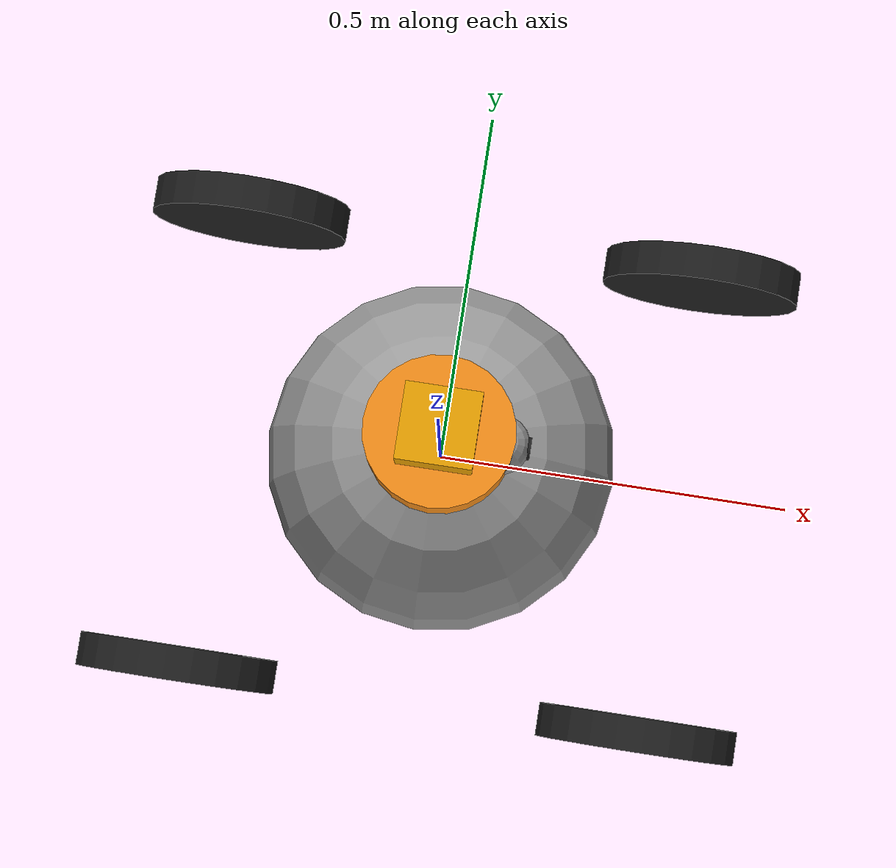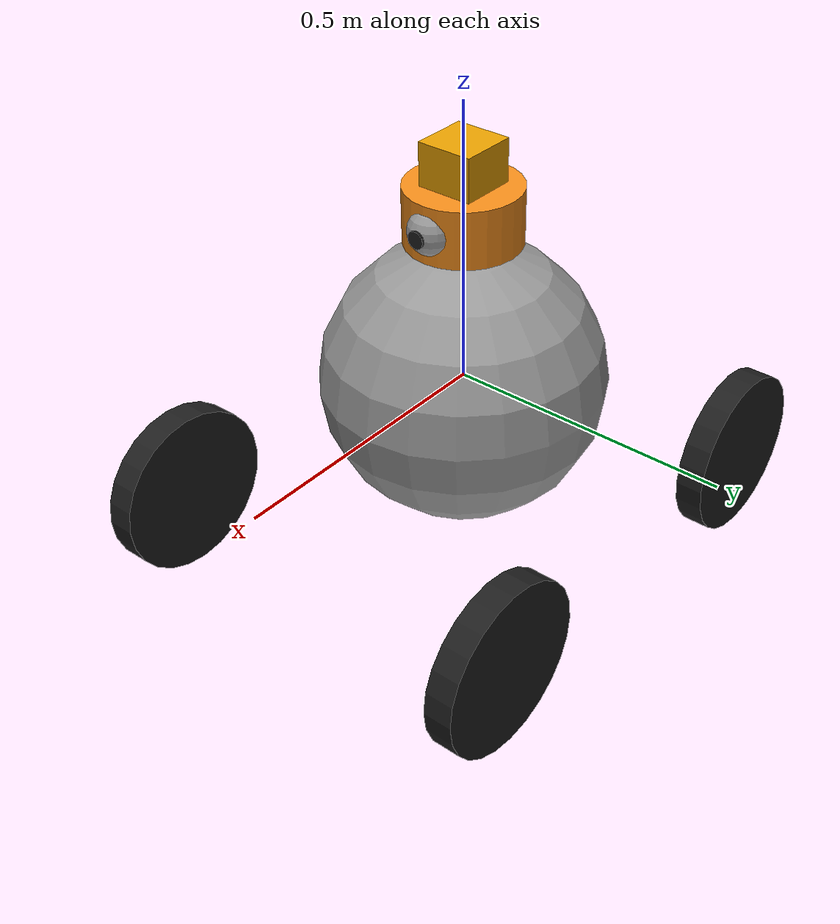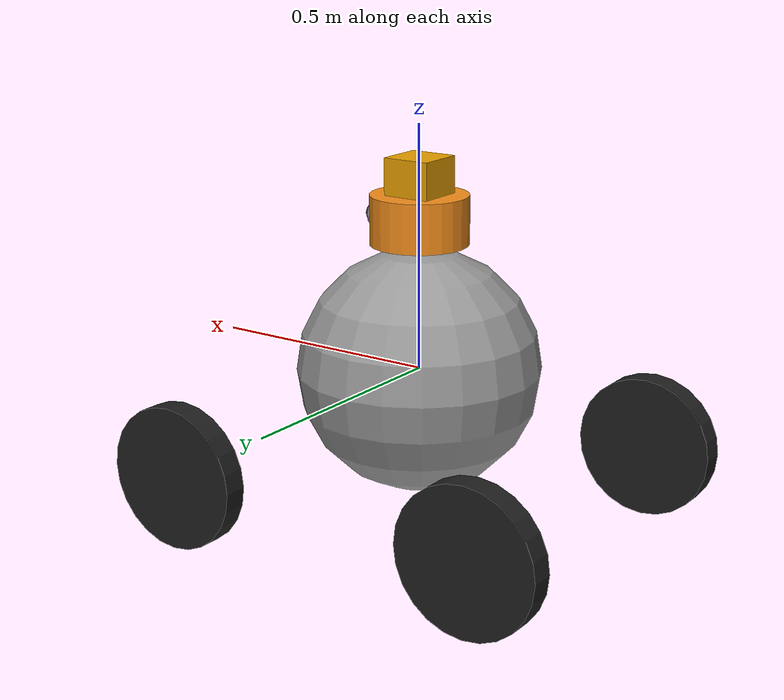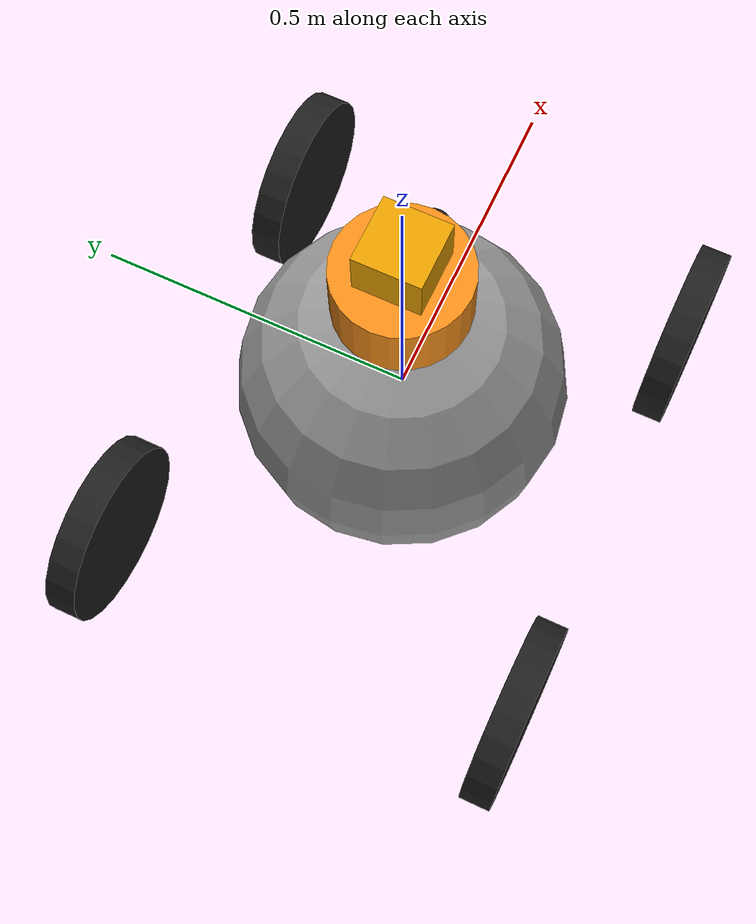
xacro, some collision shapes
<?xml version='1.0'?>

<robot name="spherebot" xmlns:xacro="http://www.ros.org/wiki/xacro">

  <xacro:include filename="$(find spherebot)/urdf/spherebot.gazebo" />

  <!-- Aluminium torso (URDF root link) -->
  <link name="spherebot_torso">
    <inertial>
      <mass value="37.66057"></mass>
      <inertia ixx="1.4503" ixy="0" ixz="0" iyy="1.4503" iyz="0" izz="1.4503" />
    </inertial>
    <collision name="spherebot_torso_collision">
      <geometry><sphere radius="0.25"></sphere></geometry>
    </collision>
    <visual name="spherebot_torso_visual">
      <geometry><sphere radius="0.25"></sphere></geometry>
    </visual>
  </link>

  <!-- Aluminium head -->
  <link name="spherebot_head">
    <inertial>
      <mass value="3.98605"></mass>
      <inertia ixx="0.0330" ixy="0" ixz="0" iyy="0.0330" iyz="0" izz="0.0271" />
    </inertial>
    <collision name="spherebot_head_collision">
      <geometry><cylinder length="0.1" radius="0.1"></cylinder></geometry>
      <origin rpy="0 0 0" xyz="0 0 0.31"></origin>
    </collision>
    <visual name="spherebot_head_visual">
      <geometry><cylinder length="0.1" radius="0.1"></cylinder></geometry>
      <origin rpy="0 0 0" xyz="0 0 0.31"></origin>
    </visual>
  </link>

  <!-- Steel eye socket -->
  <link name="spherebot_isocket">
    <inertial>
      <mass value="2.1071"></mass>
      <inertia ixx="0.00135" ixy="0" ixz="0" iyy="0.00135" iyz="0" izz="0.00135" />
    </inertial>
    <collision name="spherebot_isocket_collision">
      <geometry><sphere radius="0.04"></sphere></geometry>
    </collision>
    <visual name="spherebot_isocket_visual">
      <geometry><sphere radius="0.04"></sphere></geometry>
    </visual>
  </link>

  <joint name="spherebot_head_joint" type="fixed">
    <child link="spherebot_head"></child>
    <parent link="spherebot_torso"></parent>
  </joint>

  <joint name="spherebot_isocket_joint" type="fixed">
    <parent link="spherebot_head"></parent>
    <child link="spherebot_isocket"></child>
    <origin rpy="0 0 0" xyz="0.08 0 0.31"></origin>
  </joint>

  <!-- Aluminum wheels -->
  <link name="right_front_wheel">
    <inertial>
      <mass value="4.02124"></mass>
      <inertia ixx="0.0194" ixy="0" ixz="0" iyy="0.0221" iyz="0" izz="0.0194" />
    </inertial>
    <collision name="right_front_wheel_collision">
      <origin rpy="1.5708 0 0" xyz="0 0 0"></origin>
      <geometry><cylinder length="0.05" radius="0.15"></cylinder></geometry>
    </collision>
    <visual name="right_front_wheel_visual">
      <origin rpy="1.5708 0 0" xyz="0 0 0"></origin>
      <geometry><cylinder length="0.05" radius="0.15"></cylinder></geometry>
    </visual>
  </link>

  <link name="left_front_wheel">
    <inertial>
      <mass value="4.02124"></mass>
      <inertia ixx="0.0194" ixy="0" ixz="0" iyy="0.0221" iyz="0" izz="0.0194" />
    </inertial>
    <collision name="left_front_wheel_collision">
      <origin rpy="1.5708 0 0" xyz="0 0 0"></origin>
      <geometry><cylinder length="0.05" radius="0.15"></cylinder></geometry>
    </collision>
    <visual name="left_front_wheel_visual">
      <origin rpy="1.5708 0 0" xyz="0 0 0"></origin>
      <geometry><cylinder length="0.05" radius="0.15"></cylinder></geometry>
    </visual>
  </link>

  <link name="right_back_wheel">
    <inertial>
      <mass value="4.02124"></mass>
      <inertia ixx="0.0194" ixy="0" ixz="0" iyy="0.0221" iyz="0" izz="0.0194" />
    </inertial>
    <collision name="right_back_wheel_collision">
      <origin rpy="1.5708 0 0" xyz="0 0 0"></origin>
      <geometry><cylinder length="0.05" radius="0.15"></cylinder></geometry>
    </collision>
    <visual name="right_back_wheel_visual">
      <origin rpy="1.5708 0 0" xyz="0 0 0"></origin>
      <geometry><cylinder length="0.05" radius="0.15"></cylinder></geometry>
    </visual>
  </link>

  <link name="left_back_wheel">
    <inertial>
      <mass value="4.02124"></mass>
      <inertia ixx="0.0194" ixy="0" ixz="0" iyy="0.0221" iyz="0" izz="0.0194" />
    </inertial>
    <collision name="left_back_wheel_collision">
      <origin rpy="1.5708 0 0" xyz="0 0 0"></origin>
      <geometry><cylinder length="0.05" radius="0.15"></cylinder></geometry>
    </collision>
    <visual name="left_back_wheel_visual">
      <origin rpy="1.5708 0 0" xyz="0 0 0"></origin>
      <geometry><cylinder length="0.05" radius="0.15"></cylinder></geometry>
    </visual>
  </link>

  <joint name="right_front_wheel_joint" type="continuous">
    <origin rpy="0 0 0" xyz="0.35 -0.35 -0.2"></origin>
    <parent link="spherebot_torso"></parent>
    <child link="right_front_wheel"></child>
    <axis rpy="0 0 0" xyz="0 1 0"></axis>
    <limit effort="10000" velocity="1000"></limit>
    <dynamics damping="1.0" friction="1.0"></dynamics>
  </joint>

  <joint name="left_front_wheel_joint" type="continuous">
    <origin rpy="0 0 0" xyz="0.35 0.35 -0.2"></origin>
    <parent link="spherebot_torso"></parent>
    <child link="left_front_wheel"></child>
    <axis rpy="0 0 0" xyz="0 1 0"></axis>
    <limit effort="10000" velocity="1000"></limit>
    <dynamics damping="1.0" friction="1.0"></dynamics>
  </joint>

  <joint name="right_back_wheel_joint" type="continuous">
    <origin rpy="0 0 0" xyz="-0.35 -0.35 -0.2"></origin>
    <parent link="spherebot_torso"></parent>
    <child link="right_back_wheel"></child>
    <axis rpy="0 0 0" xyz="0 1 0"></axis>
    <limit effort="10000" velocity="1000"></limit>
    <dynamics damping="1.0" friction="1.0"></dynamics>
  </joint>

  <joint name="left_back_wheel_joint" type="continuous">
    <origin rpy="0 0 0" xyz="-0.35 0.35 -0.2"></origin>
    <parent link="spherebot_torso"></parent>
    <child link="left_back_wheel"></child>
    <axis rpy="0 0 0" xyz="0 1 0"></axis>
    <limit effort="10000" velocity="1000"></limit>
    <dynamics damping="1.0" friction="1.0"></dynamics>
  </joint>

  <link name="camera">
    <inertial>
      <mass value="0.125"></mass>
      <inertia ixx="0.000007813" ixy="0" ixz="0" iyy="0.000078500" iyz="0" izz="0.000078500" />
    </inertial>
    <collision name="camera_collision">
      <geometry><cylinder length="0.081" radius="0.015"></cylinder></geometry>
      <origin rpy="0 1.5708 0" xyz="0.0 0 0"></origin>
    </collision>
    <visual name="camera_visual">
      <geometry><cylinder length="0.081" radius="0.015"></cylinder></geometry>
      <origin rpy="0 1.5708 0" xyz="0.0 0 0"></origin>
    </visual>
  </link>

  <link name="hokuyo_lidar">
    <inertial>
      <mass value="0.16" />
      <inertia ixx="0.000266667" ixy="0" ixz="0" iyy="0.000266667" iyz="0" izz="0.000266667" />
    </inertial>
    <collision name="hokuyo_lidar_collision">
      <geometry><box size="0.1 0.1 0.1" /></geometry>
    </collision>
    <visual name="hokuyo_lidar_visual">
      <geometry><mesh filename="package://spherebot/meshes/hokuyo.dae"/></geometry>
    </visual>
  </link>

  <joint name="camera_joint" type="fixed">
    <parent link="spherebot_isocket"></parent>
    <child link="camera"></child>
  </joint>

  <link name="camera_optical"></link>
  <joint name="camera_optical_joint" type="fixed">
    <origin xyz="0 0 0" rpy="-1.5707 0 -1.5707"/>
    <parent link="camera"/>
    <child link="camera_optical"/>
  </joint>

  <joint name="hokuyo_lidar_joint" type="fixed">
    <parent link="spherebot_head"></parent>
    <child link="hokuyo_lidar"></child>
    <origin rpy="0 0 0" xyz="0 0 0.385"></origin>
  </joint>

</robot>
